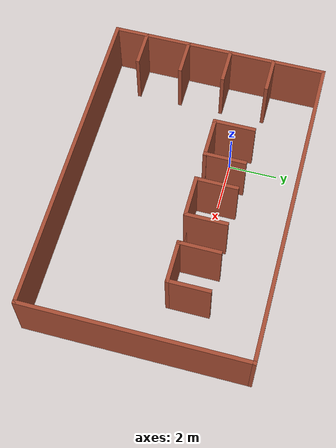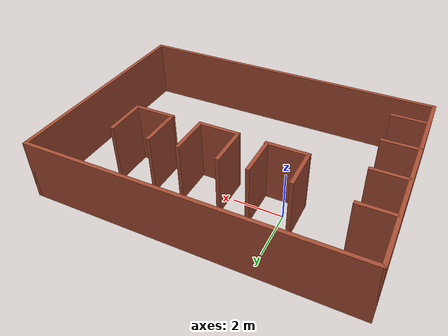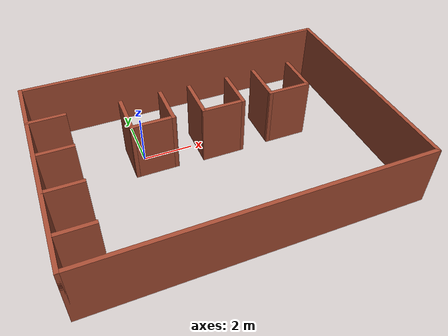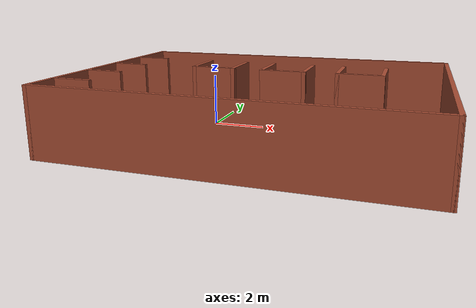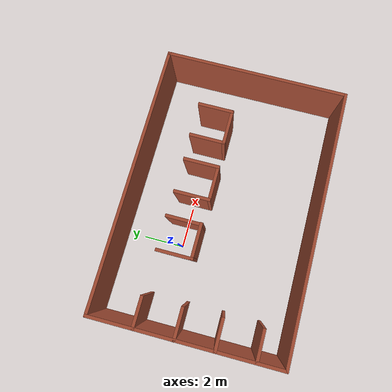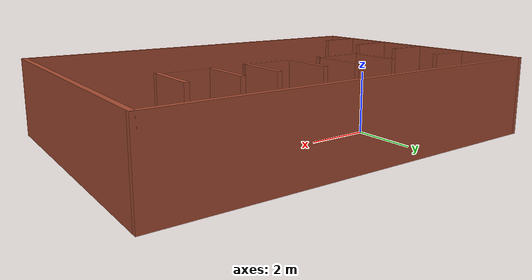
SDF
<?xml version='1.0'?>
<sdf version='1.7'>
  <model name='stockroom_3'>
    <pose>2.4662 -1.49876 0 0 -0 0</pose>
    <link name='Wall_0'>
      <collision name='Wall_0_Collision'>
        <geometry>
          <box>
            <size>9 0.15 2.5</size>
          </box>
        </geometry>
        <pose>0 0 1.25 0 -0 0</pose>
      </collision>
      <visual name='Wall_0_Visual'>
        <pose>0 0 1.25 0 -0 0</pose>
        <geometry>
          <box>
            <size>9 0.15 2.5</size>
          </box>
        </geometry>
        <material>
          <script>
            <uri>file://media/materials/scripts/gazebo.material</uri>
            <name>Gazebo/Bricks</name>
          </script>
          <ambient>1 1 1 1</ambient>
        </material>
        <meta>
          <layer>0</layer>
        </meta>
      </visual>
      <pose>-6.42294 -0 0 0 -0 -1.5708</pose>
    </link>
    <link name='Wall_11'>
      <collision name='Wall_11_Collision'>
        <geometry>
          <box>
            <size>1.5 0.15 2.5</size>
          </box>
        </geometry>
        <pose>0 0 1.25 0 -0 0</pose>
      </collision>
      <visual name='Wall_11_Visual'>
        <pose>0 0 1.25 0 -0 0</pose>
        <geometry>
          <box>
            <size>1.5 0.15 2.5</size>
          </box>
        </geometry>
        <material>
          <script>
            <uri>file://media/materials/scripts/gazebo.material</uri>
            <name>Gazebo/Bricks</name>
          </script>
          <ambient>1 1 1 1</ambient>
        </material>
        <meta>
          <layer>0</layer>
        </meta>
      </visual>
      <pose>-5.75206 0.483615 0 0 -0 0</pose>
    </link>
    <link name='Wall_14'>
      <collision name='Wall_14_Collision'>
        <geometry>
          <box>
            <size>1.5 0.15 2.5</size>
          </box>
        </geometry>
        <pose>0 0 1.25 0 -0 0</pose>
      </collision>
      <visual name='Wall_14_Visual'>
        <pose>0 0 1.25 0 -0 0</pose>
        <geometry>
          <box>
            <size>1.5 0.15 2.5</size>
          </box>
        </geometry>
        <material>
          <script>
            <uri>file://media/materials/scripts/gazebo.material</uri>
            <name>Gazebo/Bricks</name>
          </script>
          <ambient>1 1 1 1</ambient>
        </material>
        <meta>
          <layer>0</layer>
        </meta>
      </visual>
      <pose>-5.73457 -1.31611 0 0 -0 0</pose>
    </link>
    <link name='Wall_16'>
      <collision name='Wall_16_Collision'>
        <geometry>
          <box>
            <size>1.5 0.15 2.5</size>
          </box>
        </geometry>
        <pose>0 0 1.25 0 -0 0</pose>
      </collision>
      <visual name='Wall_16_Visual'>
        <pose>0 0 1.25 0 -0 0</pose>
        <geometry>
          <box>
            <size>1.5 0.15 2.5</size>
          </box>
        </geometry>
        <material>
          <script>
            <uri>file://media/materials/scripts/gazebo.material</uri>
            <name>Gazebo/Bricks</name>
          </script>
          <ambient>1 1 1 1</ambient>
        </material>
        <meta>
          <layer>0</layer>
        </meta>
      </visual>
      <pose>-5.73384 -3.13205 0 0 -0 0</pose>
    </link>
    <link name='Wall_18'>
      <collision name='Wall_18_Collision'>
        <geometry>
          <box>
            <size>1.75 0.15 2.5</size>
          </box>
        </geometry>
        <pose>0 0 1.25 0 -0 0</pose>
      </collision>
      <visual name='Wall_18_Visual'>
        <pose>0 0 1.25 0 -0 0</pose>
        <geometry>
          <box>
            <size>1.75 0.15 2.5</size>
          </box>
        </geometry>
        <material>
          <script>
            <uri>file://media/materials/scripts/gazebo.material</uri>
            <name>Gazebo/Bricks</name>
          </script>
          <ambient>1 1 1 1</ambient>
        </material>
        <meta>
          <layer>0</layer>
        </meta>
      </visual>
      <pose>4.21697 1.46105 0 0 -0 -1.5708</pose>
    </link>
    <link name='Wall_2'>
      <collision name='Wall_2_Collision'>
        <geometry>
          <box>
            <size>13 0.15 2.5</size>
          </box>
        </geometry>
        <pose>0 0 1.25 0 -0 0</pose>
      </collision>
      <visual name='Wall_2_Visual'>
        <pose>0 0 1.25 0 -0 0</pose>
        <geometry>
          <box>
            <size>13 0.15 2.5</size>
          </box>
        </geometry>
        <material>
          <script>
            <uri>file://media/materials/scripts/gazebo.material</uri>
            <name>Gazebo/Bricks</name>
          </script>
          <ambient>1 1 1 1</ambient>
        </material>
        <meta>
          <layer>0</layer>
        </meta>
      </visual>
      <pose>0.002063 -4.425 0 0 -0 0</pose>
    </link>
    <link name='Wall_20'>
      <collision name='Wall_20_Collision'>
        <geometry>
          <box>
            <size>1.75 0.15 2.5</size>
          </box>
        </geometry>
        <pose>0 0 1.25 0 -0 0</pose>
      </collision>
      <visual name='Wall_20_Visual'>
        <pose>0 0 1.25 0 -0 0</pose>
        <geometry>
          <box>
            <size>1.75 0.15 2.5</size>
          </box>
        </geometry>
        <material>
          <script>
            <uri>file://media/materials/scripts/gazebo.material</uri>
            <name>Gazebo/Bricks</name>
          </script>
          <ambient>1 1 1 1</ambient>
        </material>
        <meta>
          <layer>0</layer>
        </meta>
      </visual>
      <pose>3.41697 0.661049 0 0 -0 3.14159</pose>
    </link>
    <link name='Wall_21'>
      <collision name='Wall_21_Collision'>
        <geometry>
          <box>
            <size>1.75 0.15 2.5</size>
          </box>
        </geometry>
        <pose>0 0 1.25 0 -0 0</pose>
      </collision>
      <visual name='Wall_21_Visual'>
        <pose>0 0 1.25 0 -0 0</pose>
        <geometry>
          <box>
            <size>1.75 0.15 2.5</size>
          </box>
        </geometry>
        <material>
          <script>
            <uri>file://media/materials/scripts/gazebo.material</uri>
            <name>Gazebo/Bricks</name>
          </script>
          <ambient>1 1 1 1</ambient>
        </material>
        <meta>
          <layer>0</layer>
        </meta>
      </visual>
      <pose>2.61697 1.46105 0 0 -0 1.5708</pose>
    </link>
    <link name='Wall_23'>
      <collision name='Wall_23_Collision'>
        <geometry>
          <box>
            <size>1.75 0.15 2.5</size>
          </box>
        </geometry>
        <pose>0 0 1.25 0 -0 0</pose>
      </collision>
      <visual name='Wall_23_Visual'>
        <pose>0 0 1.25 0 -0 0</pose>
        <geometry>
          <box>
            <size>1.75 0.15 2.5</size>
          </box>
        </geometry>
        <material>
          <script>
            <uri>file://media/materials/scripts/gazebo.material</uri>
            <name>Gazebo/Bricks</name>
          </script>
          <ambient>1 1 1 1</ambient>
        </material>
        <meta>
          <layer>0</layer>
        </meta>
      </visual>
      <pose>0.602983 0.609893 0 0 -0 3.14159</pose>
    </link>
    <link name='Wall_30'>
      <collision name='Wall_30_Collision'>
        <geometry>
          <box>
            <size>1.75 0.15 2.5</size>
          </box>
        </geometry>
        <pose>0 0 1.25 0 -0 0</pose>
      </collision>
      <visual name='Wall_30_Visual'>
        <pose>0 0 1.25 0 -0 0</pose>
        <geometry>
          <box>
            <size>1.75 0.15 2.5</size>
          </box>
        </geometry>
        <material>
          <script>
            <uri>file://media/materials/scripts/gazebo.material</uri>
            <name>Gazebo/Bricks</name>
          </script>
          <ambient>1 1 1 1</ambient>
        </material>
        <meta>
          <layer>0</layer>
        </meta>
      </visual>
      <pose>-0.197017 1.43001 0 0 -0 1.5708</pose>
    </link>
    <link name='Wall_32'>
      <collision name='Wall_32_Collision'>
        <geometry>
          <box>
            <size>1.75 0.15 2.5</size>
          </box>
        </geometry>
        <pose>0 0 1.25 0 -0 0</pose>
      </collision>
      <visual name='Wall_32_Visual'>
        <pose>0 0 1.25 0 -0 0</pose>
        <geometry>
          <box>
            <size>1.75 0.15 2.5</size>
          </box>
        </geometry>
        <material>
          <script>
            <uri>file://media/materials/scripts/gazebo.material</uri>
            <name>Gazebo/Bricks</name>
          </script>
          <ambient>1 1 1 1</ambient>
        </material>
        <meta>
          <layer>0</layer>
        </meta>
      </visual>
      <pose>-1.37794 1.47023 0 0 -0 1.5708</pose>
    </link>
    <link name='Wall_34'>
      <collision name='Wall_34_Collision'>
        <geometry>
          <box>
            <size>1.75 0.15 2.5</size>
          </box>
        </geometry>
        <pose>0 0 1.25 0 -0 0</pose>
      </collision>
      <visual name='Wall_34_Visual'>
        <pose>0 0 1.25 0 -0 0</pose>
        <geometry>
          <box>
            <size>1.75 0.15 2.5</size>
          </box>
        </geometry>
        <material>
          <script>
            <uri>file://media/materials/scripts/gazebo.material</uri>
            <name>Gazebo/Bricks</name>
          </script>
          <ambient>1 1 1 1</ambient>
        </material>
        <meta>
          <layer>0</layer>
        </meta>
      </visual>
      <pose>-2.15782 0.670234 0 0 -0 3.14159</pose>
    </link>
    <link name='Wall_37'>
      <collision name='Wall_37_Collision'>
        <geometry>
          <box>
            <size>1.75 0.15 2.5</size>
          </box>
        </geometry>
        <pose>0 0 1.25 0 -0 0</pose>
      </collision>
      <visual name='Wall_37_Visual'>
        <pose>0 0 1.25 0 -0 0</pose>
        <geometry>
          <box>
            <size>1.75 0.15 2.5</size>
          </box>
        </geometry>
        <material>
          <script>
            <uri>file://media/materials/scripts/gazebo.material</uri>
            <name>Gazebo/Bricks</name>
          </script>
          <ambient>1 1 1 1</ambient>
        </material>
        <meta>
          <layer>0</layer>
        </meta>
      </visual>
      <pose>1.40298 1.40989 0 0 -0 1.5708</pose>
    </link>
    <link name='Wall_39'>
      <collision name='Wall_39_Collision'>
        <geometry>
          <box>
            <size>1.75 0.15 2.5</size>
          </box>
        </geometry>
        <pose>0 0 1.25 0 -0 0</pose>
      </collision>
      <visual name='Wall_39_Visual'>
        <pose>0 0 1.25 0 -0 0</pose>
        <geometry>
          <box>
            <size>1.75 0.15 2.5</size>
          </box>
        </geometry>
        <material>
          <script>
            <uri>file://media/materials/scripts/gazebo.material</uri>
            <name>Gazebo/Bricks</name>
          </script>
          <ambient>1 1 1 1</ambient>
        </material>
        <meta>
          <layer>0</layer>
        </meta>
      </visual>
      <pose>-2.95782 1.47023 0 0 -0 1.5708</pose>
    </link>
    <link name='Wall_4'>
      <collision name='Wall_4_Collision'>
        <geometry>
          <box>
            <size>9 0.15 2.5</size>
          </box>
        </geometry>
        <pose>0 0 1.25 0 -0 0</pose>
      </collision>
      <visual name='Wall_4_Visual'>
        <pose>0 0 1.25 0 -0 0</pose>
        <geometry>
          <box>
            <size>9 0.15 2.5</size>
          </box>
        </geometry>
        <material>
          <script>
            <uri>file://media/materials/scripts/gazebo.material</uri>
            <name>Gazebo/Bricks</name>
          </script>
          <ambient>1 1 1 1</ambient>
        </material>
        <meta>
          <layer>0</layer>
        </meta>
      </visual>
      <pose>6.42706 -0 0 0 -0 1.5708</pose>
    </link>
    <link name='Wall_7'>
      <collision name='Wall_7_Collision'>
        <geometry>
          <box>
            <size>13 0.15 2.5</size>
          </box>
        </geometry>
        <pose>0 0 1.25 0 -0 0</pose>
      </collision>
      <visual name='Wall_7_Visual'>
        <pose>0 0 1.25 0 -0 0</pose>
        <geometry>
          <box>
            <size>13 0.15 2.5</size>
          </box>
        </geometry>
        <material>
          <script>
            <uri>file://media/materials/scripts/gazebo.material</uri>
            <name>Gazebo/Bricks</name>
          </script>
          <ambient>1 1 1 1</ambient>
        </material>
        <meta>
          <layer>0</layer>
        </meta>
      </visual>
      <pose>0.002063 4.425 0 0 -0 0</pose>
    </link>
    <link name='Wall_9'>
      <collision name='Wall_9_Collision'>
        <geometry>
          <box>
            <size>1.5 0.15 2.5</size>
          </box>
        </geometry>
        <pose>0 0 1.25 0 -0 0</pose>
      </collision>
      <visual name='Wall_9_Visual'>
        <pose>0 0 1.25 0 -0 0</pose>
        <geometry>
          <box>
            <size>1.5 0.15 2.5</size>
          </box>
        </geometry>
        <material>
          <script>
            <uri>file://media/materials/scripts/gazebo.material</uri>
            <name>Gazebo/Bricks</name>
          </script>
          <ambient>1 1 1 1</ambient>
        </material>
        <meta>
          <layer>0</layer>
        </meta>
      </visual>
      <pose>-5.74368 2.3206 0 0 -0 0</pose>
    </link>
    <static>1</static>
  </model>
</sdf>
